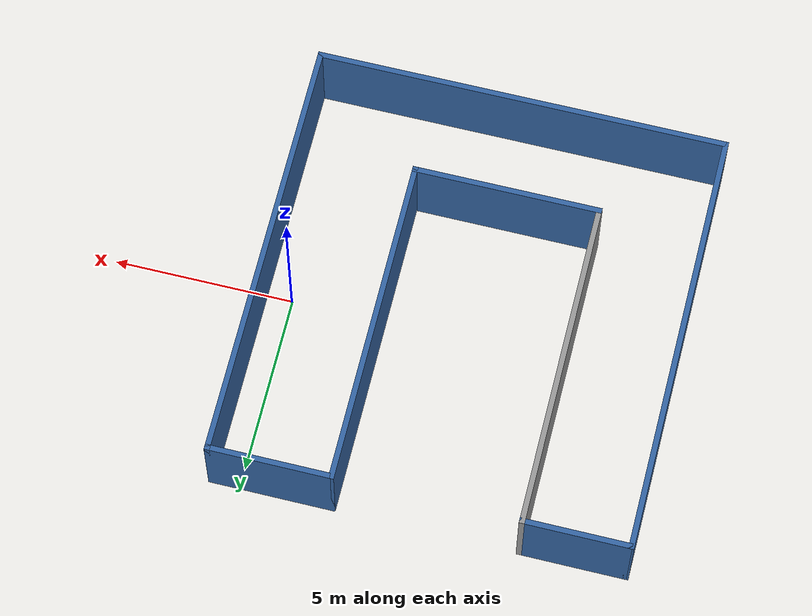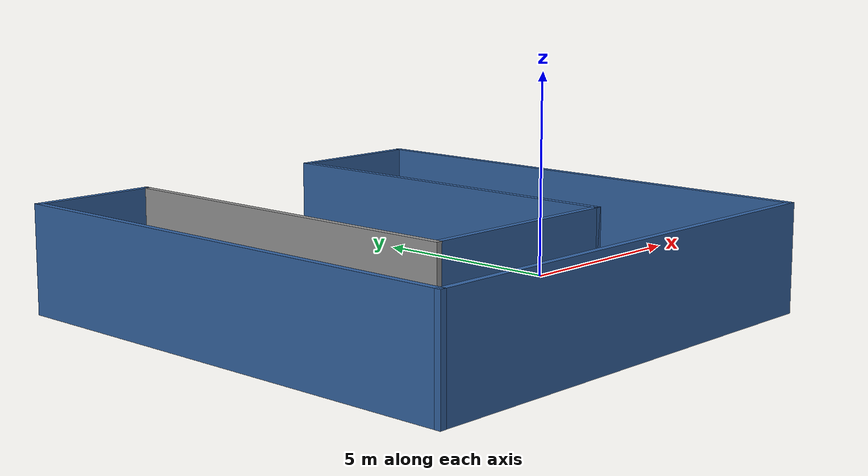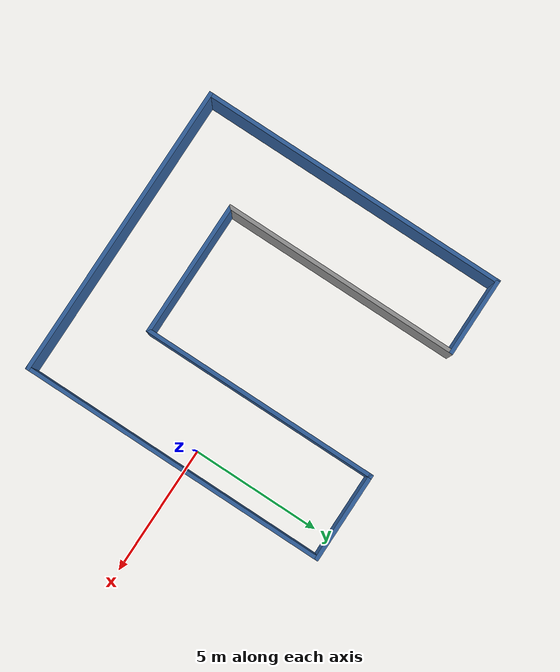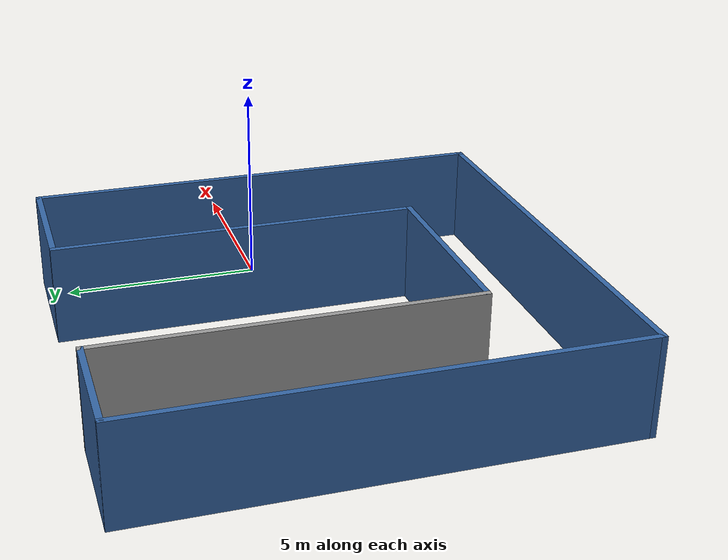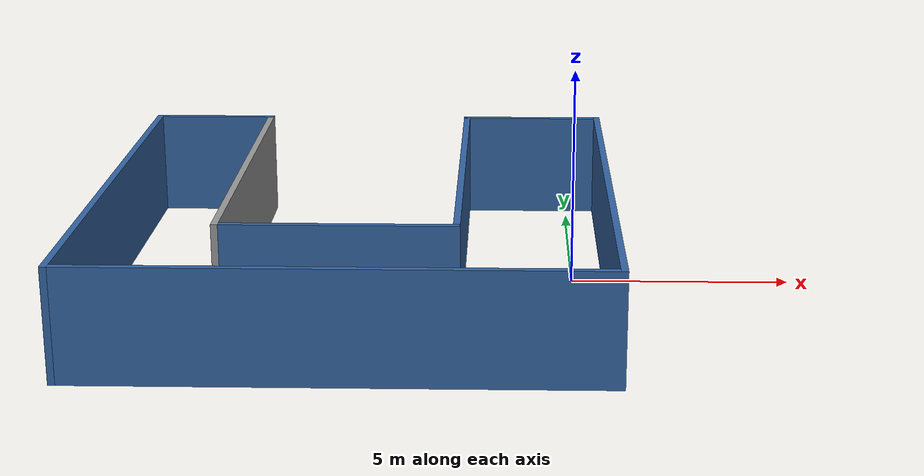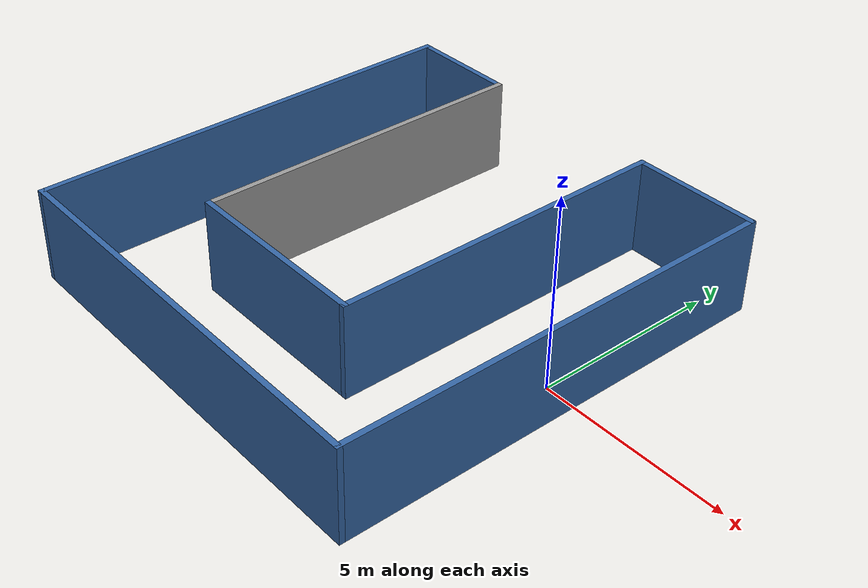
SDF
<?xml version='1.0'?>
<sdf version='1.6'>
  <model name='mybuilding'>
    <pose frame=''>-4.90047 -0.410921 0 0 -0 0</pose>
    <link name='Wall_0'>
      <collision name='Wall_0_Collision'>
        <geometry>
          <box>
            <size>3 0.15 2.5</size>
          </box>
        </geometry>
        <pose frame=''>0 0 1.25 0 -0 0</pose>
      </collision>
      <visual name='Wall_0_Visual'>
        <pose frame=''>0 0 1.25 0 -0 0</pose>
        <geometry>
          <box>
            <size>3 0.15 2.5</size>
          </box>
        </geometry>
        <material>
          <script>
            <uri>file://media/materials/scripts/gazebo.material</uri>
            <name>Gazebo/Grey</name>
          </script>
          <ambient>0.203922 0.396078 0.643137 1</ambient>
        </material>
        <meta>
          <layer>0</layer>
        </meta>
      </visual>
      <pose frame=''>-4.2 5.925 0 0 -0 0</pose>
    </link>
    <link name='Wall_1'>
      <collision name='Wall_1_Collision'>
        <geometry>
          <box>
            <size>9.25 0.15 2.5</size>
          </box>
        </geometry>
        <pose frame=''>0 0 1.25 0 -0 0</pose>
      </collision>
      <visual name='Wall_1_Visual'>
        <pose frame=''>0 0 1.25 0 -0 0</pose>
        <geometry>
          <box>
            <size>9.25 0.15 2.5</size>
          </box>
        </geometry>
        <material>
          <script>
            <uri>file://media/materials/scripts/gazebo.material</uri>
            <name>Gazebo/Grey</name>
          </script>
          <ambient>1 1 1 1</ambient>
        </material>
        <meta>
          <layer>0</layer>
        </meta>
      </visual>
      <pose frame=''>-2.775 1.375 0 0 -0 -1.5708</pose>
    </link>
    <link name='Wall_2'>
      <collision name='Wall_2_Collision'>
        <geometry>
          <box>
            <size>5.25 0.15 2.5</size>
          </box>
        </geometry>
        <pose frame=''>0 0 1.25 0 -0 0</pose>
      </collision>
      <visual name='Wall_2_Visual'>
        <pose frame=''>0 0 1.25 0 -0 0</pose>
        <geometry>
          <box>
            <size>5.25 0.15 2.5</size>
          </box>
        </geometry>
        <material>
          <script>
            <uri>file://media/materials/scripts/gazebo.material</uri>
            <name>Gazebo/Grey</name>
          </script>
          <ambient>0.203922 0.396078 0.643137 1</ambient>
        </material>
        <meta>
          <layer>0</layer>
        </meta>
      </visual>
      <pose frame=''>-0.225 -3.175 0 0 -0 0</pose>
    </link>
    <link name='Wall_3'>
      <collision name='Wall_3_Collision'>
        <geometry>
          <box>
            <size>9.25 0.15 2.5</size>
          </box>
        </geometry>
        <pose frame=''>0 0 1.25 0 -0 0</pose>
      </collision>
      <visual name='Wall_3_Visual'>
        <pose frame=''>0 0 1.25 0 -0 0</pose>
        <geometry>
          <box>
            <size>9.25 0.15 2.5</size>
          </box>
        </geometry>
        <material>
          <script>
            <uri>file://media/materials/scripts/gazebo.material</uri>
            <name>Gazebo/Grey</name>
          </script>
          <ambient>0.203922 0.396078 0.643137 1</ambient>
        </material>
        <meta>
          <layer>0</layer>
        </meta>
      </visual>
      <pose frame=''>2.325 1.375 0 0 -0 1.5708</pose>
    </link>
    <link name='Wall_4'>
      <collision name='Wall_4_Collision'>
        <geometry>
          <box>
            <size>3.5 0.15 2.5</size>
          </box>
        </geometry>
        <pose frame=''>0 0 1.25 0 -0 0</pose>
      </collision>
      <visual name='Wall_4_Visual'>
        <pose frame=''>0 0 1.25 0 -0 0</pose>
        <geometry>
          <box>
            <size>3.5 0.15 2.5</size>
          </box>
        </geometry>
        <material>
          <script>
            <uri>file://media/materials/scripts/gazebo.material</uri>
            <name>Gazebo/Grey</name>
          </script>
          <ambient>0.203922 0.396078 0.643137 1</ambient>
        </material>
        <meta>
          <layer>0</layer>
        </meta>
      </visual>
      <pose frame=''>4 5.925 0 0 -0 0</pose>
    </link>
    <link name='Wall_5'>
      <collision name='Wall_5_Collision'>
        <geometry>
          <box>
            <size>12 0.15 2.5</size>
          </box>
        </geometry>
        <pose frame=''>0 0 1.25 0 -0 0</pose>
      </collision>
      <visual name='Wall_5_Visual'>
        <pose frame=''>0 0 1.25 0 -0 0</pose>
        <geometry>
          <box>
            <size>12 0.15 2.5</size>
          </box>
        </geometry>
        <material>
          <script>
            <uri>file://media/materials/scripts/gazebo.material</uri>
            <name>Gazebo/Grey</name>
          </script>
          <ambient>0.203922 0.396078 0.643137 1</ambient>
        </material>
        <meta>
          <layer>0</layer>
        </meta>
      </visual>
      <pose frame=''>5.675 -0 0 0 -0 -1.5708</pose>
    </link>
    <link name='Wall_6'>
      <collision name='Wall_6_Collision'>
        <geometry>
          <box>
            <size>11.5 0.15 2.5</size>
          </box>
        </geometry>
        <pose frame=''>0 0 1.25 0 -0 0</pose>
      </collision>
      <visual name='Wall_6_Visual'>
        <pose frame=''>0 0 1.25 0 -0 0</pose>
        <geometry>
          <box>
            <size>11.5 0.15 2.5</size>
          </box>
        </geometry>
        <material>
          <script>
            <uri>file://media/materials/scripts/gazebo.material</uri>
            <name>Gazebo/Grey</name>
          </script>
          <ambient>0.203922 0.396078 0.643137 1</ambient>
        </material>
        <meta>
          <layer>0</layer>
        </meta>
      </visual>
      <pose frame=''>0 -5.925 0 0 -0 3.14159</pose>
    </link>
    <link name='Wall_7'>
      <collision name='Wall_7_Collision'>
        <geometry>
          <box>
            <size>12 0.15 2.5</size>
          </box>
        </geometry>
        <pose frame=''>0 0 1.25 0 -0 0</pose>
      </collision>
      <visual name='Wall_7_Visual'>
        <pose frame=''>0 0 1.25 0 -0 0</pose>
        <geometry>
          <box>
            <size>12 0.15 2.5</size>
          </box>
        </geometry>
        <material>
          <script>
            <uri>file://media/materials/scripts/gazebo.material</uri>
            <name>Gazebo/Grey</name>
          </script>
          <ambient>0.203922 0.396078 0.643137 1</ambient>
        </material>
        <meta>
          <layer>0</layer>
        </meta>
      </visual>
      <pose frame=''>-5.675 -0 0 0 -0 1.5708</pose>
    </link>
    <static>1</static>
  </model>
</sdf>
